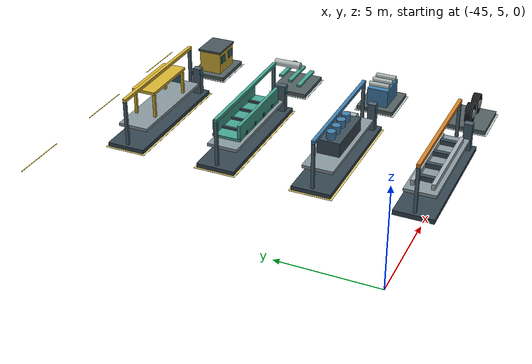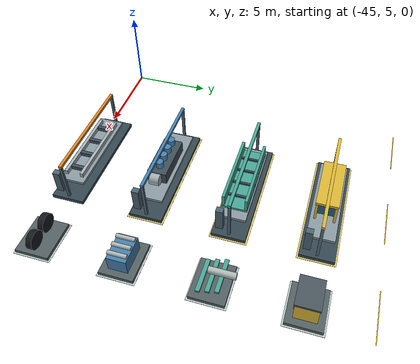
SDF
<sdf version="1.7">
 <world name="warehouse_layout_demo">
  <include><uri>model://sun</uri></include>
  <model name="part_stage_1_line_1_nw">
   <static>true</static>
   <pose>-36.0 5.5 0 0 0 0</pose>
   <link name="fixture">
    <collision name="collision">
     <pose>0 0 1.4 0 0 0</pose>
     <geometry><box><size>7.2 2.0 2.8</size></box></geometry>
    </collision>
    <visual name="machine_base">
     <pose>0 0 0.12 0 0 0</pose>
     <geometry><box><size>7.2 2.0 0.24</size></box></geometry>
     <material><ambient>0.20 0.27 0.31 1</ambient><diffuse>0.20 0.27 0.31 1</diffuse></material>
    </visual>
    <visual name="work_table">
     <pose>0 0 0.92 0 0 0</pose>
     <geometry><box><size>5.6 1.6 0.16</size></box></geometry>
     <material><ambient>0.53 0.59 0.62 1</ambient><diffuse>0.53 0.59 0.62 1</diffuse></material>
    </visual>
    <visual name="controller">
     <pose>3.05 -0.63 1.06 0 0 0</pose>
     <geometry><box><size>0.35 0.42 1.46</size></box></geometry>
     <material><ambient>0.29 0.38 0.43 1</ambient><diffuse>0.29 0.38 0.43 1</diffuse></material>
    </visual>
    <visual name="control_screen">
     <pose>3.05 -0.85 1.45 0 0 0</pose>
     <geometry><box><size>0.25 0.02 0.2</size></box></geometry>
     <material><ambient>0.09 0.64 0.75 1</ambient><diffuse>0.09 0.64 0.75 1</diffuse></material>
    </visual>
    <visual name="hoist_post_0">
     <pose>-3.35 0 1.4 0 0 0</pose>
     <geometry><box><size>0.14 0.16 2.72</size></box></geometry>
     <material><ambient>0.31 0.40 0.45 1</ambient><diffuse>0.31 0.40 0.45 1</diffuse></material>
    </visual>
    <visual name="hoist_post_1">
     <pose>3.35 0 1.4 0 0 0</pose>
     <geometry><box><size>0.14 0.16 2.72</size></box></geometry>
     <material><ambient>0.31 0.40 0.45 1</ambient><diffuse>0.31 0.40 0.45 1</diffuse></material>
    </visual>
    <visual name="hoist_beam">
     <pose>0 0 2.71 0 0 0</pose>
     <geometry><box><size>6.85 0.18 0.18</size></box></geometry>
     <material><ambient>0.83 0.50 0.14 1</ambient><diffuse>0.83 0.50 0.14 1</diffuse></material>
    </visual>
    <visual name="frame_rail_0">
     <pose>0 -0.5 1.14 0 0 0</pose>
     <geometry><box><size>4.8 0.19 0.3</size></box></geometry>
     <material><ambient>0.64 0.69 0.71 1</ambient><diffuse>0.64 0.69 0.71 1</diffuse></material>
    </visual>
    <visual name="frame_rail_1">
     <pose>0 0.5 1.14 0 0 0</pose>
     <geometry><box><size>4.8 0.19 0.3</size></box></geometry>
     <material><ambient>0.64 0.69 0.71 1</ambient><diffuse>0.64 0.69 0.71 1</diffuse></material>
    </visual>
    <visual name="frame_cross_0">
     <pose>-1.75 0 1.14 0 0 0</pose>
     <geometry><box><size>0.22 1.16 0.25</size></box></geometry>
     <material><ambient>0.23 0.30 0.34 1</ambient><diffuse>0.23 0.30 0.34 1</diffuse></material>
    </visual>
    <visual name="frame_cross_1">
     <pose>-0.55 0 1.14 0 0 0</pose>
     <geometry><box><size>0.22 1.16 0.25</size></box></geometry>
     <material><ambient>0.23 0.30 0.34 1</ambient><diffuse>0.23 0.30 0.34 1</diffuse></material>
    </visual>
    <visual name="frame_cross_2">
     <pose>0.65 0 1.14 0 0 0</pose>
     <geometry><box><size>0.22 1.16 0.25</size></box></geometry>
     <material><ambient>0.23 0.30 0.34 1</ambient><diffuse>0.23 0.30 0.34 1</diffuse></material>
    </visual>
    <visual name="frame_cross_3">
     <pose>1.85 0 1.14 0 0 0</pose>
     <geometry><box><size>0.22 1.16 0.25</size></box></geometry>
     <material><ambient>0.23 0.30 0.34 1</ambient><diffuse>0.23 0.30 0.34 1</diffuse></material>
    </visual>
   </link>
  </model>
  <model name="parts_kit_1_line_1_nw_pad">
   <static>true</static>
   <pose>-29.5 5.5 0.012 0 0 0</pose>
   <link name="marking">
    <visual name="visual">
     <geometry><box><size>2.6 2.2 0.012</size></box></geometry>
     <material><ambient>0.72 0.79 0.78 1</ambient><diffuse>0.72 0.79 0.78 1</diffuse></material>
    </visual>
   </link>
  </model>
  <model name="parts_kit_1_line_1_nw">
   <static>true</static>
   <pose>-29.5 5.5 0 0 0 0</pose>
   <link name="fixture">
    <collision name="collision">
     <pose>0 0 0.9 0 0 0</pose>
     <geometry><box><size>2.4 2.0 1.8</size></box></geometry>
    </collision>
    <visual name="kit_frame">
     <pose>0 0 0.12 0 0 0</pose>
     <geometry><box><size>2.4 2.0 0.24</size></box></geometry>
     <material><ambient>0.32 0.37 0.38 1</ambient><diffuse>0.32 0.37 0.38 1</diffuse></material>
    </visual>
    <visual name="spare_tire_0">
     <pose>-0.6 0 0.8 1.57079632679 0 0</pose>
     <geometry><cylinder><radius>0.55</radius><length>0.35</length></cylinder></geometry>
     <material><ambient>0.08 0.09 0.10 1</ambient><diffuse>0.08 0.09 0.10 1</diffuse></material>
    </visual>
    <visual name="tire_hub_0">
     <pose>-0.6 -0.2 0.8 1.57079632679 0 0</pose>
     <geometry><cylinder><radius>0.22</radius><length>0.05</length></cylinder></geometry>
     <material><ambient>0.69 0.73 0.72 1</ambient><diffuse>0.69 0.73 0.72 1</diffuse></material>
    </visual>
    <visual name="spare_tire_1">
     <pose>0.6 0 0.8 1.57079632679 0 0</pose>
     <geometry><cylinder><radius>0.55</radius><length>0.35</length></cylinder></geometry>
     <material><ambient>0.08 0.09 0.10 1</ambient><diffuse>0.08 0.09 0.10 1</diffuse></material>
    </visual>
    <visual name="tire_hub_1">
     <pose>0.6 -0.2 0.8 1.57079632679 0 0</pose>
     <geometry><cylinder><radius>0.22</radius><length>0.05</length></cylinder></geometry>
     <material><ambient>0.69 0.73 0.72 1</ambient><diffuse>0.69 0.73 0.72 1</diffuse></material>
    </visual>
   </link>
  </model>
  <model name="part_stage_1_line_2_nw_pad">
   <static>true</static>
   <pose>-36.0 10.5 0.012 0 0 0</pose>
   <link name="marking">
    <visual name="visual">
     <geometry><box><size>7.4 2.2 0.012</size></box></geometry>
     <material><ambient>0.87 0.78 0.39 1</ambient><diffuse>0.87 0.78 0.39 1</diffuse></material>
    </visual>
   </link>
  </model>
  <model name="part_stage_1_line_2_nw">
   <static>true</static>
   <pose>-36.0 10.5 0 0 0 0</pose>
   <link name="fixture">
    <collision name="collision">
     <pose>0 0 1.4 0 0 0</pose>
     <geometry><box><size>7.2 2.0 2.8</size></box></geometry>
    </collision>
    <visual name="machine_base">
     <pose>0 0 0.12 0 0 0</pose>
     <geometry><box><size>7.2 2.0 0.24</size></box></geometry>
     <material><ambient>0.20 0.27 0.31 1</ambient><diffuse>0.20 0.27 0.31 1</diffuse></material>
    </visual>
    <visual name="work_table">
     <pose>0 0 0.92 0 0 0</pose>
     <geometry><box><size>5.6 1.6 0.16</size></box></geometry>
     <material><ambient>0.53 0.59 0.62 1</ambient><diffuse>0.53 0.59 0.62 1</diffuse></material>
    </visual>
    <visual name="controller">
     <pose>3.05 -0.63 1.06 0 0 0</pose>
     <geometry><box><size>0.35 0.42 1.46</size></box></geometry>
     <material><ambient>0.29 0.38 0.43 1</ambient><diffuse>0.29 0.38 0.43 1</diffuse></material>
    </visual>
    <visual name="control_screen">
     <pose>3.05 -0.85 1.45 0 0 0</pose>
     <geometry><box><size>0.25 0.02 0.2</size></box></geometry>
     <material><ambient>0.09 0.64 0.75 1</ambient><diffuse>0.09 0.64 0.75 1</diffuse></material>
    </visual>
    <visual name="hoist_post_0">
     <pose>-3.35 0 1.4 0 0 0</pose>
     <geometry><box><size>0.14 0.16 2.72</size></box></geometry>
     <material><ambient>0.31 0.40 0.45 1</ambient><diffuse>0.31 0.40 0.45 1</diffuse></material>
    </visual>
    <visual name="hoist_post_1">
     <pose>3.35 0 1.4 0 0 0</pose>
     <geometry><box><size>0.14 0.16 2.72</size></box></geometry>
     <material><ambient>0.31 0.40 0.45 1</ambient><diffuse>0.31 0.40 0.45 1</diffuse></material>
    </visual>
    <visual name="hoist_beam">
     <pose>0 0 2.71 0 0 0</pose>
     <geometry><box><size>6.85 0.18 0.18</size></box></geometry>
     <material><ambient>0.26 0.49 0.67 1</ambient><diffuse>0.26 0.49 0.67 1</diffuse></material>
    </visual>
    <visual name="engine_block">
     <pose>0 0 1.37 0 0 0</pose>
     <geometry><box><size>2.9 1.18 0.76</size></box></geometry>
     <material><ambient>0.23 0.30 0.34 1</ambient><diffuse>0.23 0.30 0.34 1</diffuse></material>
    </visual>
    <visual name="engine_cylinder_0">
     <pose>-1.1 0 1.9 0.0 0 0</pose>
     <geometry><cylinder><radius>0.23</radius><length>0.5</length></cylinder></geometry>
     <material><ambient>0.26 0.49 0.67 1</ambient><diffuse>0.26 0.49 0.67 1</diffuse></material>
    </visual>
    <visual name="engine_cylinder_1">
     <pose>-0.45 0 1.9 0.0 0 0</pose>
     <geometry><cylinder><radius>0.23</radius><length>0.5</length></cylinder></geometry>
     <material><ambient>0.26 0.49 0.67 1</ambient><diffuse>0.26 0.49 0.67 1</diffuse></material>
    </visual>
    <visual name="engine_cylinder_2">
     <pose>0.2 0 1.9 0.0 0 0</pose>
     <geometry><cylinder><radius>0.23</radius><length>0.5</length></cylinder></geometry>
     <material><ambient>0.26 0.49 0.67 1</ambient><diffuse>0.26 0.49 0.67 1</diffuse></material>
    </visual>
    <visual name="engine_cylinder_3">
     <pose>0.85 0 1.9 0.0 0 0</pose>
     <geometry><cylinder><radius>0.23</radius><length>0.5</length></cylinder></geometry>
     <material><ambient>0.26 0.49 0.67 1</ambient><diffuse>0.26 0.49 0.67 1</diffuse></material>
    </visual>
    <visual name="turbo">
     <pose>1.65 0 1.43 1.57079632679 0 0</pose>
     <geometry><cylinder><radius>0.35</radius><length>0.58</length></cylinder></geometry>
     <material><ambient>0.64 0.69 0.71 1</ambient><diffuse>0.64 0.69 0.71 1</diffuse></material>
    </visual>
   </link>
  </model>
  <model name="parts_kit_1_line_2_nw_pad">
   <static>true</static>
   <pose>-29.5 10.5 0.012 0 0 0</pose>
   <link name="marking">
    <visual name="visual">
     <geometry><box><size>2.6 2.2 0.012</size></box></geometry>
     <material><ambient>0.72 0.79 0.78 1</ambient><diffuse>0.72 0.79 0.78 1</diffuse></material>
    </visual>
   </link>
  </model>
  <model name="parts_kit_1_line_2_nw">
   <static>true</static>
   <pose>-29.5 10.5 0 0 0 0</pose>
   <link name="fixture">
    <collision name="collision">
     <pose>0 0 0.9 0 0 0</pose>
     <geometry><box><size>2.4 2.0 1.8</size></box></geometry>
    </collision>
    <visual name="kit_frame">
     <pose>0 0 0.12 0 0 0</pose>
     <geometry><box><size>2.4 2.0 0.24</size></box></geometry>
     <material><ambient>0.32 0.37 0.38 1</ambient><diffuse>0.32 0.37 0.38 1</diffuse></material>
    </visual>
    <visual name="engine_crate">
     <pose>0 0 0.7 0 0 0</pose>
     <geometry><box><size>1.65 1.14 1.02</size></box></geometry>
     <material><ambient>0.26 0.49 0.67 1</ambient><diffuse>0.26 0.49 0.67 1</diffuse></material>
    </visual>
    <visual name="pipe_0">
     <pose>-0.55 0 1.38 1.57079632679 0 0</pose>
     <geometry><cylinder><radius>0.12</radius><length>1.1</length></cylinder></geometry>
     <material><ambient>0.69 0.73 0.72 1</ambient><diffuse>0.69 0.73 0.72 1</diffuse></material>
    </visual>
    <visual name="pipe_1">
     <pose>0 0 1.38 1.57079632679 0 0</pose>
     <geometry><cylinder><radius>0.12</radius><length>1.1</length></cylinder></geometry>
     <material><ambient>0.69 0.73 0.72 1</ambient><diffuse>0.69 0.73 0.72 1</diffuse></material>
    </visual>
    <visual name="pipe_2">
     <pose>0.55 0 1.38 1.57079632679 0 0</pose>
     <geometry><cylinder><radius>0.12</radius><length>1.1</length></cylinder></geometry>
     <material><ambient>0.69 0.73 0.72 1</ambient><diffuse>0.69 0.73 0.72 1</diffuse></material>
    </visual>
   </link>
  </model>
  <model name="part_stage_1_line_3_nw_pad">
   <static>true</static>
   <pose>-36.0 15.5 0.012 0 0 0</pose>
   <link name="marking">
    <visual name="visual">
     <geometry><box><size>7.4 2.2 0.012</size></box></geometry>
     <material><ambient>0.87 0.78 0.39 1</ambient><diffuse>0.87 0.78 0.39 1</diffuse></material>
    </visual>
   </link>
  </model>
  <model name="part_stage_1_line_3_nw">
   <static>true</static>
   <pose>-36.0 15.5 0 0 0 0</pose>
   <link name="fixture">
    <collision name="collision">
     <pose>0 0 1.4 0 0 0</pose>
     <geometry><box><size>7.2 2.0 2.8</size></box></geometry>
    </collision>
    <visual name="machine_base">
     <pose>0 0 0.12 0 0 0</pose>
     <geometry><box><size>7.2 2.0 0.24</size></box></geometry>
     <material><ambient>0.20 0.27 0.31 1</ambient><diffuse>0.20 0.27 0.31 1</diffuse></material>
    </visual>
    <visual name="work_table">
     <pose>0 0 0.92 0 0 0</pose>
     <geometry><box><size>5.6 1.6 0.16</size></box></geometry>
     <material><ambient>0.53 0.59 0.62 1</ambient><diffuse>0.53 0.59 0.62 1</diffuse></material>
    </visual>
    <visual name="controller">
     <pose>3.05 -0.63 1.06 0 0 0</pose>
     <geometry><box><size>0.35 0.42 1.46</size></box></geometry>
     <material><ambient>0.29 0.38 0.43 1</ambient><diffuse>0.29 0.38 0.43 1</diffuse></material>
    </visual>
    <visual name="control_screen">
     <pose>3.05 -0.85 1.45 0 0 0</pose>
     <geometry><box><size>0.25 0.02 0.2</size></box></geometry>
     <material><ambient>0.09 0.64 0.75 1</ambient><diffuse>0.09 0.64 0.75 1</diffuse></material>
    </visual>
    <visual name="hoist_post_0">
     <pose>-3.35 0 1.4 0 0 0</pose>
     <geometry><box><size>0.14 0.16 2.72</size></box></geometry>
     <material><ambient>0.31 0.40 0.45 1</ambient><diffuse>0.31 0.40 0.45 1</diffuse></material>
    </visual>
    <visual name="hoist_post_1">
     <pose>3.35 0 1.4 0 0 0</pose>
     <geometry><box><size>0.14 0.16 2.72</size></box></geometry>
     <material><ambient>0.31 0.40 0.45 1</ambient><diffuse>0.31 0.40 0.45 1</diffuse></material>
    </visual>
    <visual name="hoist_beam">
     <pose>0 0 2.71 0 0 0</pose>
     <geometry><box><size>6.85 0.18 0.18</size></box></geometry>
     <material><ambient>0.27 0.64 0.57 1</ambient><diffuse>0.27 0.64 0.57 1</diffuse></material>
    </visual>
    <visual name="bed_plate">
     <pose>0 0 1.23 0 0 0</pose>
     <geometry><box><size>4.65 1.5 0.14</size></box></geometry>
     <material><ambient>0.27 0.64 0.57 1</ambient><diffuse>0.27 0.64 0.57 1</diffuse></material>
    </visual>
    <visual name="bed_side_0">
     <pose>0 -0.66 1.62 0 0 0</pose>
     <geometry><box><size>4.55 0.16 0.78</size></box></geometry>
     <material><ambient>0.27 0.64 0.57 1</ambient><diffuse>0.27 0.64 0.57 1</diffuse></material>
    </visual>
    <visual name="bed_side_1">
     <pose>0 0.66 1.62 0 0 0</pose>
     <geometry><box><size>4.55 0.16 0.78</size></box></geometry>
     <material><ambient>0.27 0.64 0.57 1</ambient><diffuse>0.27 0.64 0.57 1</diffuse></material>
    </visual>
    <visual name="bed_rib_0">
     <pose>-1.55 0 1.32 0 0 0</pose>
     <geometry><box><size>0.12 1.52 0.19</size></box></geometry>
     <material><ambient>0.23 0.30 0.34 1</ambient><diffuse>0.23 0.30 0.34 1</diffuse></material>
    </visual>
    <visual name="bed_rib_1">
     <pose>-0.55 0 1.32 0 0 0</pose>
     <geometry><box><size>0.12 1.52 0.19</size></box></geometry>
     <material><ambient>0.23 0.30 0.34 1</ambient><diffuse>0.23 0.30 0.34 1</diffuse></material>
    </visual>
    <visual name="bed_rib_2">
     <pose>0.45 0 1.32 0 0 0</pose>
     <geometry><box><size>0.12 1.52 0.19</size></box></geometry>
     <material><ambient>0.23 0.30 0.34 1</ambient><diffuse>0.23 0.30 0.34 1</diffuse></material>
    </visual>
    <visual name="bed_rib_3">
     <pose>1.45 0 1.32 0 0 0</pose>
     <geometry><box><size>0.12 1.52 0.19</size></box></geometry>
     <material><ambient>0.23 0.30 0.34 1</ambient><diffuse>0.23 0.30 0.34 1</diffuse></material>
    </visual>
   </link>
  </model>
  <model name="parts_kit_1_line_3_nw_pad">
   <static>true</static>
   <pose>-29.5 15.5 0.012 0 0 0</pose>
   <link name="marking">
    <visual name="visual">
     <geometry><box><size>2.6 2.2 0.012</size></box></geometry>
     <material><ambient>0.72 0.79 0.78 1</ambient><diffuse>0.72 0.79 0.78 1</diffuse></material>
    </visual>
   </link>
  </model>
  <model name="parts_kit_1_line_3_nw">
   <static>true</static>
   <pose>-29.5 15.5 0 0 0 0</pose>
   <link name="fixture">
    <collision name="collision">
     <pose>0 0 0.9 0 0 0</pose>
     <geometry><box><size>2.4 2.0 1.8</size></box></geometry>
    </collision>
    <visual name="kit_frame">
     <pose>0 0 0.12 0 0 0</pose>
     <geometry><box><size>2.4 2.0 0.24</size></box></geometry>
     <material><ambient>0.32 0.37 0.38 1</ambient><diffuse>0.32 0.37 0.38 1</diffuse></material>
    </visual>
    <visual name="bed_panel_0">
     <pose>0 -0.52 0.58 0 0 0</pose>
     <geometry><box><size>1.96 0.24 0.13</size></box></geometry>
     <material><ambient>0.27 0.64 0.57 1</ambient><diffuse>0.27 0.64 0.57 1</diffuse></material>
    </visual>
    <visual name="bed_panel_1">
     <pose>0 0 0.78 0 0 0</pose>
     <geometry><box><size>1.96 0.24 0.13</size></box></geometry>
     <material><ambient>0.27 0.64 0.57 1</ambient><diffuse>0.27 0.64 0.57 1</diffuse></material>
    </visual>
    <visual name="bed_panel_2">
     <pose>0 0.52 0.98 0 0 0</pose>
     <geometry><box><size>1.96 0.24 0.13</size></box></geometry>
     <material><ambient>0.27 0.64 0.57 1</ambient><diffuse>0.27 0.64 0.57 1</diffuse></material>
    </visual>
    <visual name="lift_ram">
     <pose>0 0.54 1.28 1.57079632679 0 0</pose>
     <geometry><cylinder><radius>0.19</radius><length>1.5</length></cylinder></geometry>
     <material><ambient>0.69 0.73 0.72 1</ambient><diffuse>0.69 0.73 0.72 1</diffuse></material>
    </visual>
   </link>
  </model>
  <model name="part_stage_1_line_4_nw_pad">
   <static>true</static>
   <pose>-36.0 20.5 0.012 0 0 0</pose>
   <link name="marking">
    <visual name="visual">
     <geometry><box><size>7.4 2.2 0.012</size></box></geometry>
     <material><ambient>0.87 0.78 0.39 1</ambient><diffuse>0.87 0.78 0.39 1</diffuse></material>
    </visual>
   </link>
  </model>
  <model name="part_stage_1_line_4_nw">
   <static>true</static>
   <pose>-36.0 20.5 0 0 0 0</pose>
   <link name="fixture">
    <collision name="collision">
     <pose>0 0 1.4 0 0 0</pose>
     <geometry><box><size>7.2 2.0 2.8</size></box></geometry>
    </collision>
    <visual name="machine_base">
     <pose>0 0 0.12 0 0 0</pose>
     <geometry><box><size>7.2 2.0 0.24</size></box></geometry>
     <material><ambient>0.20 0.27 0.31 1</ambient><diffuse>0.20 0.27 0.31 1</diffuse></material>
    </visual>
    <visual name="work_table">
     <pose>0 0 0.92 0 0 0</pose>
     <geometry><box><size>5.6 1.6 0.16</size></box></geometry>
     <material><ambient>0.53 0.59 0.62 1</ambient><diffuse>0.53 0.59 0.62 1</diffuse></material>
    </visual>
    <visual name="controller">
     <pose>3.05 -0.63 1.06 0 0 0</pose>
     <geometry><box><size>0.35 0.42 1.46</size></box></geometry>
     <material><ambient>0.29 0.38 0.43 1</ambient><diffuse>0.29 0.38 0.43 1</diffuse></material>
    </visual>
    <visual name="control_screen">
     <pose>3.05 -0.85 1.45 0 0 0</pose>
     <geometry><box><size>0.25 0.02 0.2</size></box></geometry>
     <material><ambient>0.09 0.64 0.75 1</ambient><diffuse>0.09 0.64 0.75 1</diffuse></material>
    </visual>
    <visual name="hoist_post_0">
     <pose>-3.35 0 1.4 0 0 0</pose>
     <geometry><box><size>0.14 0.16 2.72</size></box></geometry>
     <material><ambient>0.31 0.40 0.45 1</ambient><diffuse>0.31 0.40 0.45 1</diffuse></material>
    </visual>
    <visual name="hoist_post_1">
     <pose>3.35 0 1.4 0 0 0</pose>
     <geometry><box><size>0.14 0.16 2.72</size></box></geometry>
     <material><ambient>0.31 0.40 0.45 1</ambient><diffuse>0.31 0.40 0.45 1</diffuse></material>
    </visual>
    <visual name="hoist_beam">
     <pose>0 0 2.71 0 0 0</pose>
     <geometry><box><size>6.85 0.18 0.18</size></box></geometry>
     <material><ambient>0.84 0.70 0.20 1</ambient><diffuse>0.84 0.70 0.20 1</diffuse></material>
    </visual>
    <visual name="cab_post_0_0">
     <pose>-1.48 -0.54 1.7 0 0 0</pose>
     <geometry><box><size>0.14 0.14 1.4</size></box></geometry>
     <material><ambient>0.84 0.70 0.20 1</ambient><diffuse>0.84 0.70 0.20 1</diffuse></material>
    </visual>
    <visual name="cab_post_0_1">
     <pose>-1.48 0.54 1.7 0 0 0</pose>
     <geometry><box><size>0.14 0.14 1.4</size></box></geometry>
     <material><ambient>0.84 0.70 0.20 1</ambient><diffuse>0.84 0.70 0.20 1</diffuse></material>
    </visual>
    <visual name="cab_post_1_0">
     <pose>1.48 -0.54 1.7 0 0 0</pose>
     <geometry><box><size>0.14 0.14 1.4</size></box></geometry>
     <material><ambient>0.84 0.70 0.20 1</ambient><diffuse>0.84 0.70 0.20 1</diffuse></material>
    </visual>
    <visual name="cab_post_1_1">
     <pose>1.48 0.54 1.7 0 0 0</pose>
     <geometry><box><size>0.14 0.14 1.4</size></box></geometry>
     <material><ambient>0.84 0.70 0.20 1</ambient><diffuse>0.84 0.70 0.20 1</diffuse></material>
    </visual>
    <visual name="cab_roof">
     <pose>0 0 2.37 0 0 0</pose>
     <geometry><box><size>3.25 1.28 0.16</size></box></geometry>
     <material><ambient>0.84 0.70 0.20 1</ambient><diffuse>0.84 0.70 0.20 1</diffuse></material>
    </visual>
    <visual name="windshield">
     <pose>1.52 -0.03 1.88 0 0 0</pose>
     <geometry><box><size>0.05 0.95 0.7</size></box></geometry>
     <material><ambient>0.16 0.36 0.44 1</ambient><diffuse>0.16 0.36 0.44 1</diffuse></material>
    </visual>
   </link>
  </model>
  <model name="parts_kit_1_line_4_nw_pad">
   <static>true</static>
   <pose>-29.5 20.5 0.012 0 0 0</pose>
   <link name="marking">
    <visual name="visual">
     <geometry><box><size>2.6 2.2 0.012</size></box></geometry>
     <material><ambient>0.72 0.79 0.78 1</ambient><diffuse>0.72 0.79 0.78 1</diffuse></material>
    </visual>
   </link>
  </model>
  <model name="parts_kit_1_line_4_nw">
   <static>true</static>
   <pose>-29.5 20.5 0 0 0 0</pose>
   <link name="fixture">
    <collision name="collision">
     <pose>0 0 0.9 0 0 0</pose>
     <geometry><box><size>2.4 2.0 1.8</size></box></geometry>
    </collision>
    <visual name="kit_frame">
     <pose>0 0 0.12 0 0 0</pose>
     <geometry><box><size>2.4 2.0 0.24</size></box></geometry>
     <material><ambient>0.32 0.37 0.38 1</ambient><diffuse>0.32 0.37 0.38 1</diffuse></material>
    </visual>
    <visual name="cab_module">
     <pose>0 0 0.8 0 0 0</pose>
     <geometry><box><size>1.62 1.25 1.35</size></box></geometry>
     <material><ambient>0.84 0.70 0.20 1</ambient><diffuse>0.84 0.70 0.20 1</diffuse></material>
    </visual>
    <visual name="cab_window_0">
     <pose>-0.43 -0.64 1.02 0 0 0</pose>
     <geometry><box><size>0.47 0.03 0.45</size></box></geometry>
     <material><ambient>0.19 0.41 0.47 1</ambient><diffuse>0.19 0.41 0.47 1</diffuse></material>
    </visual>
    <visual name="cab_window_1">
     <pose>0.43 -0.64 1.02 0 0 0</pose>
     <geometry><box><size>0.47 0.03 0.45</size></box></geometry>
     <material><ambient>0.19 0.41 0.47 1</ambient><diffuse>0.19 0.41 0.47 1</diffuse></material>
    </visual>
    <visual name="cab_roof">
     <pose>0 0 1.52 0 0 0</pose>
     <geometry><box><size>1.75 1.34 0.12</size></box></geometry>
     <material><ambient>0.28 0.33 0.36 1</ambient><diffuse>0.28 0.33 0.36 1</diffuse></material>
    </visual>
   </link>
  </model>
  <model name="road_dashed_line_1">
   <static>true</static>
   <pose>-42 24.0 0.045 0 0 0</pose>
   <link name="marking">
    <visual name="visual">
     <geometry><box><size>3.0 0.042 0.012</size></box></geometry>
     <material><ambient>0.96 0.82 0.12 1</ambient><diffuse>0.96 0.82 0.12 1</diffuse></material>
    </visual>
   </link>
  </model>
  <model name="road_dashed_line_2">
   <static>true</static>
   <pose>-36 24.0 0.045 0 0 0</pose>
   <link name="marking">
    <visual name="visual">
     <geometry><box><size>3.0 0.042 0.012</size></box></geometry>
     <material><ambient>0.96 0.82 0.12 1</ambient><diffuse>0.96 0.82 0.12 1</diffuse></material>
    </visual>
   </link>
  </model>
  <model name="road_dashed_line_3">
   <static>true</static>
   <pose>-30 24.0 0.045 0 0 0</pose>
   <link name="marking">
    <visual name="visual">
     <geometry><box><size>3.0 0.042 0.012</size></box></geometry>
     <material><ambient>0.96 0.82 0.12 1</ambient><diffuse>0.96 0.82 0.12 1</diffuse></material>
    </visual>
   </link>
  </model>
 </world>
</sdf>
